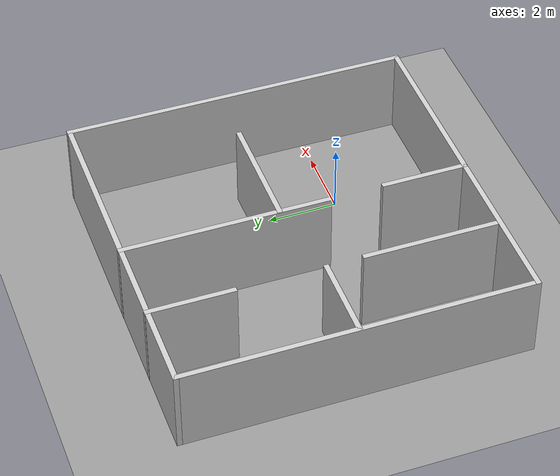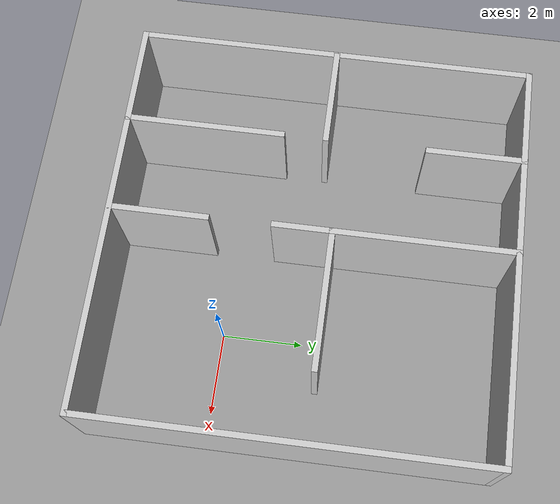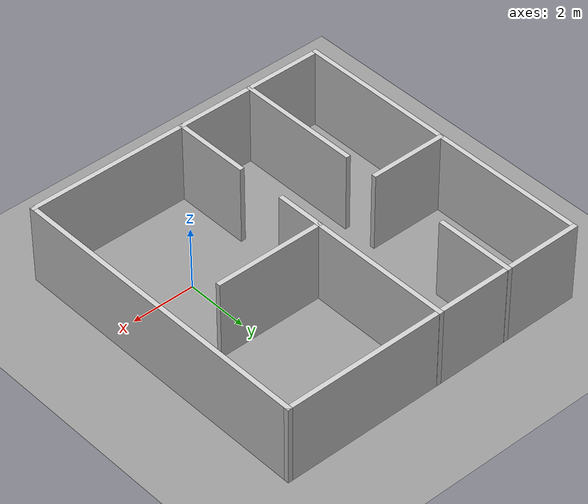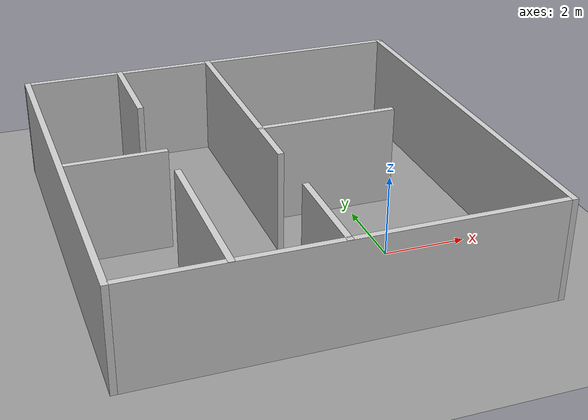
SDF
<?xml version="1.0"?>
<sdf version="1.8">
    <world name="room_with_walls_1">
        <physics name="1ms" type="ignored">
            <!--
                The maximum step size the simulation can take.
                Aiming for a minimum of 250 Hz
            -->
            <max_step_size>0.002</max_step_size>
            <real_time_factor>1.0</real_time_factor>
            <real_time_update_rate>500</real_time_update_rate>
        </physics>
        <plugin filename="ignition-gazebo-physics-system" name="ignition::gazebo::systems::Physics"></plugin>
        <plugin filename="ignition-gazebo-user-commands-system" name="ignition::gazebo::systems::UserCommands"></plugin>
        <plugin filename="ignition-gazebo-scene-broadcaster-system" name="ignition::gazebo::systems::SceneBroadcaster"></plugin>
        <plugin filename="ignition-gazebo-contact-system" name="ignition::gazebo::systems::Contact"></plugin>
        <light type="directional" name="sun">
            <cast_shadows>false</cast_shadows>
            <pose>0 0 10 0 0 0</pose>
            <diffuse>0.8 0.8 0.8 1</diffuse>
            <specular>0.2 0.2 0.2 1</specular>
            <attenuation>
                <range>1000</range>
                <constant>0.9</constant>
                <linear>0.01</linear>
                <quadratic>0.001</quadratic>
            </attenuation>
            <direction>-0.5 0.1 -0.9</direction>
        </light>

        <model name="ground_plane">
            <static>true</static>
            <link name="link">
                <collision name="collision">
                    <geometry>
                        <plane>
                            <normal>0 0 1</normal>
                            <size>100 100</size>
                        </plane>
                    </geometry>
                </collision>
                <visual name="visual">
                    <geometry>
                        <plane>
                            <normal>0 0 1</normal>
                            <size>100 100</size>
                        </plane>
                    </geometry>
                    <material>
                        <ambient>0.6 0.6 0.6 1</ambient>
                        <diffuse>0.6 0.6 0.6 1</diffuse>
                        <specular>0.6 0.6 0.6 1</specular>
                    </material>
                </visual>
            </link>
        </model>

        <!-- The room model -->
        <include>
            <uri>model://room_with_walls_1</uri>
            <pose>-2.0 2 0 0 0 0</pose>
        </include>
    </world>
</sdf>

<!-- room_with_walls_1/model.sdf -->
<sdf version='1.6'>
  <model name='room_with_walls_10x10'>
    <pose frame=''>-5.11916 3.33552 0 0 -0 0</pose>
    <link name='Wall_1'>
      <collision name='Wall_1_Collision'>
        <geometry>
          <box>
            <size>10 0.15 2.5</size>
          </box>
        </geometry>
        <pose frame=''>0 0 1.25 0 -0 0</pose>
      </collision>
      <visual name='Wall_1_Visual'>
        <pose frame=''>0 0 1.25 0 -0 0</pose>
        <geometry>
          <box>
            <size>10 0.15 2.5</size>
          </box>
        </geometry>
        <material>
          <ambient>0.8 0.8 0.8 1</ambient>
          <diffuse>0.8 0.8 0.8 1</diffuse>
          <specular>0.8 0.8 0.8 1</specular>
        </material>
        <meta>
          <layer>0</layer>
        </meta>
      </visual>
      <pose frame=''>-0.119159 -4.92736 0 0 -0 0</pose>
    </link>
    <link name='Wall_11'>
      <collision name='Wall_11_Collision'>
        <geometry>
          <box>
            <size>2.5 0.15 2.5</size>
          </box>
        </geometry>
        <pose frame=''>0 0 1.25 0 -0 0</pose>
      </collision>
      <visual name='Wall_11_Visual'>
        <pose frame=''>0 0 1.25 0 -0 0</pose>
        <geometry>
          <box>
            <size>2.5 0.15 2.5</size>
          </box>
        </geometry>
        <material>
          <ambient>0.8 0.8 0.8 1</ambient>
          <diffuse>0.8 0.8 0.8 1</diffuse>
          <specular>0.8 0.8 0.8 1</specular>
        </material>
        <meta>
          <layer>0</layer>
        </meta>
      </visual>
      <pose frame=''>-2.64666 3.75236 0 0 -0 -1.5708</pose>
    </link>
    <link name='Wall_16'>
      <collision name='Wall_16_Collision'>
        <geometry>
          <box>
            <size>2.5 0.15 2.5</size>
          </box>
        </geometry>
        <pose frame=''>0 0 1.25 0 -0 0</pose>
      </collision>
      <visual name='Wall_16_Visual'>
        <pose frame=''>0 0 1.25 0 -0 0</pose>
        <geometry>
          <box>
            <size>2.5 0.15 2.5</size>
          </box>
        </geometry>
        <material>
          <ambient>0.8 0.8 0.8 1</ambient>
          <diffuse>0.8 0.8 0.8 1</diffuse>
          <specular>0.8 0.8 0.8 1</specular>
        </material>
        <meta>
          <layer>0</layer>
        </meta>
      </visual>
      <pose frame=''>-3.84066 0.028362 0 0 -0 0</pose>
    </link>
    <link name='Wall_18'>
      <collision name='Wall_18_Collision'>
        <geometry>
          <box>
            <size>4 0.15 2.5</size>
          </box>
        </geometry>
        <pose frame=''>0 0 1.25 0 -0 0</pose>
      </collision>
      <visual name='Wall_18_Visual'>
        <pose frame=''>0 0 1.25 0 -0 0</pose>
        <geometry>
          <box>
            <size>4 0.15 2.5</size>
          </box>
        </geometry>
        <material>
          <ambient>0.8 0.8 0.8 1</ambient>
          <diffuse>0.8 0.8 0.8 1</diffuse>
          <specular>0.8 0.8 0.8 1</specular>
        </material>
        <meta>
          <layer>0</layer>
        </meta>
      </visual>
      <pose frame=''>-2.63516 -2.99164 0 0 -0 1.5708</pose>
    </link>
    <link name='Wall_2'>
      <collision name='Wall_2_Collision'>
        <geometry>
          <box>
            <size>10 0.15 2.5</size>
          </box>
        </geometry>
        <pose frame=''>0 0 1.25 0 -0 0</pose>
      </collision>
      <visual name='Wall_2_Visual'>
        <pose frame=''>0 0 1.25 0 -0 0</pose>
        <geometry>
          <box>
            <size>10 0.15 2.5</size>
          </box>
        </geometry>
        <material>
          <ambient>0.8 0.8 0.8 1</ambient>
          <diffuse>0.8 0.8 0.8 1</diffuse>
          <specular>0.8 0.8 0.8 1</specular>
        </material>
        <meta>
          <layer>0</layer>
        </meta>
      </visual>
      <pose frame=''>4.80584 -0.002362 0 0 -0 1.5708</pose>
    </link>
    <link name='Wall_24'>
      <collision name='Wall_24_Collision'>
        <geometry>
          <box>
            <size>6 0.15 2.5</size>
          </box>
        </geometry>
        <pose frame=''>0 0 1.25 0 -0 0</pose>
      </collision>
      <visual name='Wall_24_Visual'>
        <pose frame=''>0 0 1.25 0 -0 0</pose>
        <geometry>
          <box>
            <size>6 0.15 2.5</size>
          </box>
        </geometry>
        <material>
          <ambient>0.8 0.8 0.8 1</ambient>
          <diffuse>0.8 0.8 0.8 1</diffuse>
          <specular>0.8 0.8 0.8 1</specular>
        </material>
        <meta>
          <layer>0</layer>
        </meta>
      </visual>
      <pose frame=''>-0.243157 2.00236 0 0 -0 -1.5708</pose>
    </link>
    <link name='Wall_28'>
      <collision name='Wall_28_Collision'>
        <geometry>
          <box>
            <size>2.5 0.15 2.5</size>
          </box>
        </geometry>
        <pose frame=''>0 0 1.25 0 -0 0</pose>
      </collision>
      <visual name='Wall_28_Visual'>
        <pose frame=''>0 0 1.25 0 -0 0</pose>
        <geometry>
          <box>
            <size>2.5 0.15 2.5</size>
          </box>
        </geometry>
        <material>
          <ambient>0.8 0.8 0.8 1</ambient>
          <diffuse>0.8 0.8 0.8 1</diffuse>
          <specular>0.8 0.8 0.8 1</specular>
        </material>
        <meta>
          <layer>0</layer>
        </meta>
      </visual>
      <pose frame=''>-0.220157 -3.74164 0 0 -0 1.5708</pose>
    </link>
    <link name='Wall_3'>
      <collision name='Wall_3_Collision'>
        <geometry>
          <box>
            <size>10 0.15 2.5</size>
          </box>
        </geometry>
        <pose frame=''>0 0 1.25 0 -0 0</pose>
      </collision>
      <visual name='Wall_3_Visual'>
        <pose frame=''>0 0 1.25 0 -0 0</pose>
        <geometry>
          <box>
            <size>10 0.15 2.5</size>
          </box>
        </geometry>
        <material>
          <ambient>0.8 0.8 0.8 1</ambient>
          <diffuse>0.8 0.8 0.8 1</diffuse>
          <specular>0.8 0.8 0.8 1</specular>
        </material>
        <meta>
          <layer>0</layer>
        </meta>
      </visual>
      <pose frame=''>-0.119159 4.92264 0 0 -0 3.14159</pose>
    </link>
    <link name='Wall_36'>
      <collision name='Wall_36_Collision'>
        <geometry>
          <box>
            <size>3.5 0.15 2.5</size>
          </box>
        </geometry>
        <pose frame=''>0 0 1.25 0 -0 0</pose>
      </collision>
      <visual name='Wall_36_Visual'>
        <pose frame=''>0 0 1.25 0 -0 0</pose>
        <geometry>
          <box>
            <size>3.5 0.15 2.5</size>
          </box>
        </geometry>
        <material>
          <ambient>0.8 0.8 0.8 1</ambient>
          <diffuse>0.8 0.8 0.8 1</diffuse>
          <specular>0.8 0.8 0.8 1</specular>
        </material>
        <meta>
          <layer>0</layer>
        </meta>
      </visual>
      <pose frame=''>1.44334 0.476862 0 0 -0 0</pose>
    </link>
    <link name='Wall_4'>
      <collision name='Wall_4_Collision'>
        <geometry>
          <box>
            <size>10 0.15 2.5</size>
          </box>
        </geometry>
        <pose frame=''>0 0 1.25 0 -0 0</pose>
      </collision>
      <visual name='Wall_4_Visual'>
        <pose frame=''>0 0 1.25 0 -0 0</pose>
        <geometry>
          <box>
            <size>10 0.15 2.5</size>
          </box>
        </geometry>
        <material>
          <ambient>0.8 0.8 0.8 1</ambient>
          <diffuse>0.8 0.8 0.8 1</diffuse>
          <specular>0.8 0.8 0.8 1</specular>
        </material>
        <meta>
          <layer>0</layer>
        </meta>
      </visual>
      <pose frame=''>-5.04416 -0.002362 0 0 -0 -1.5708</pose>
    </link>
    <static>1</static>
  </model>
</sdf>
